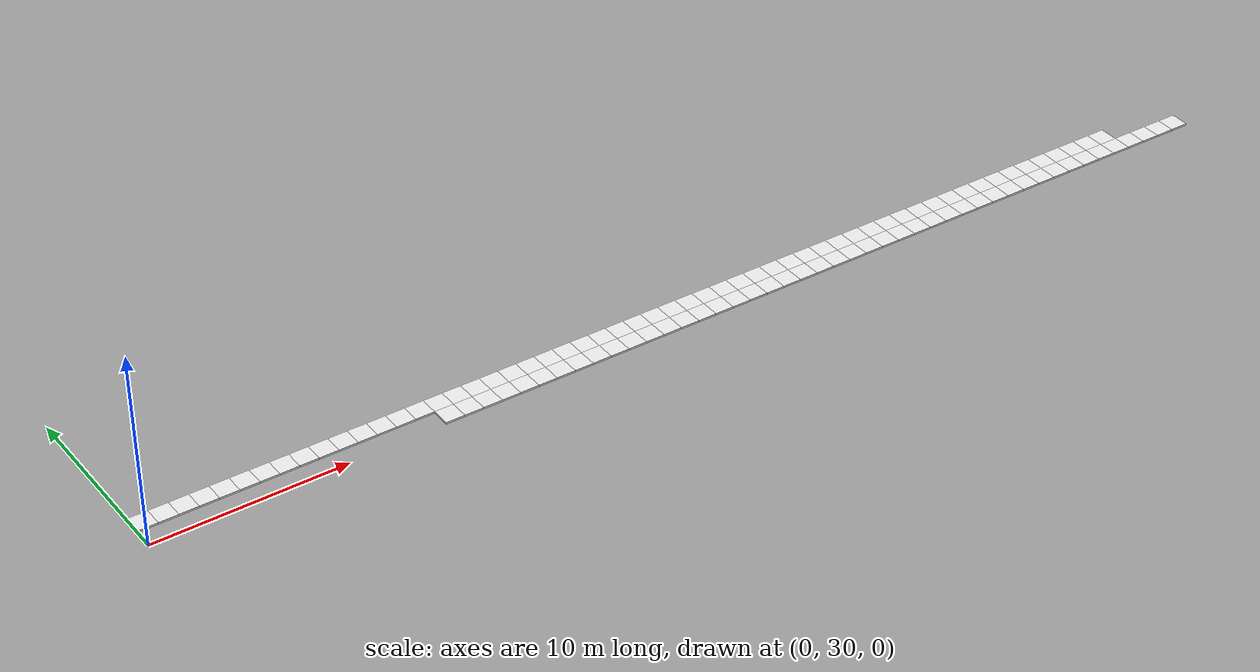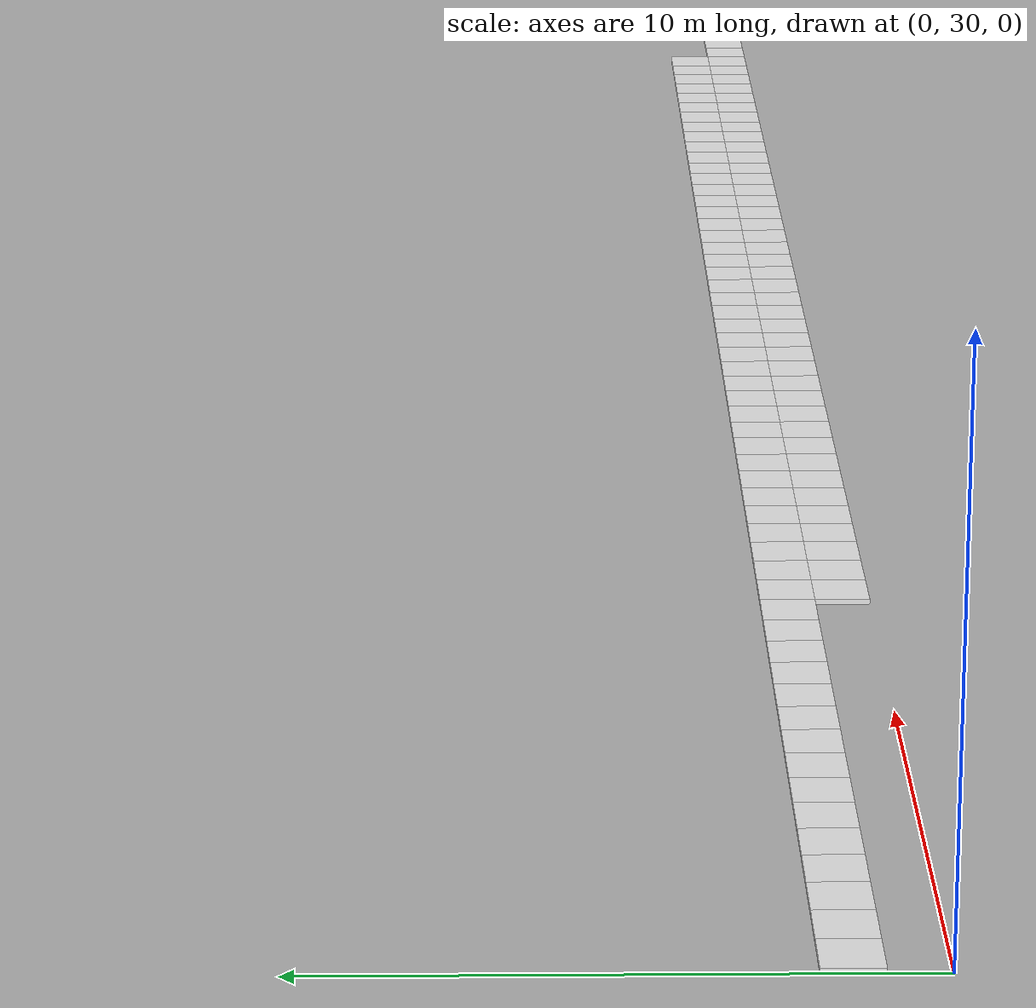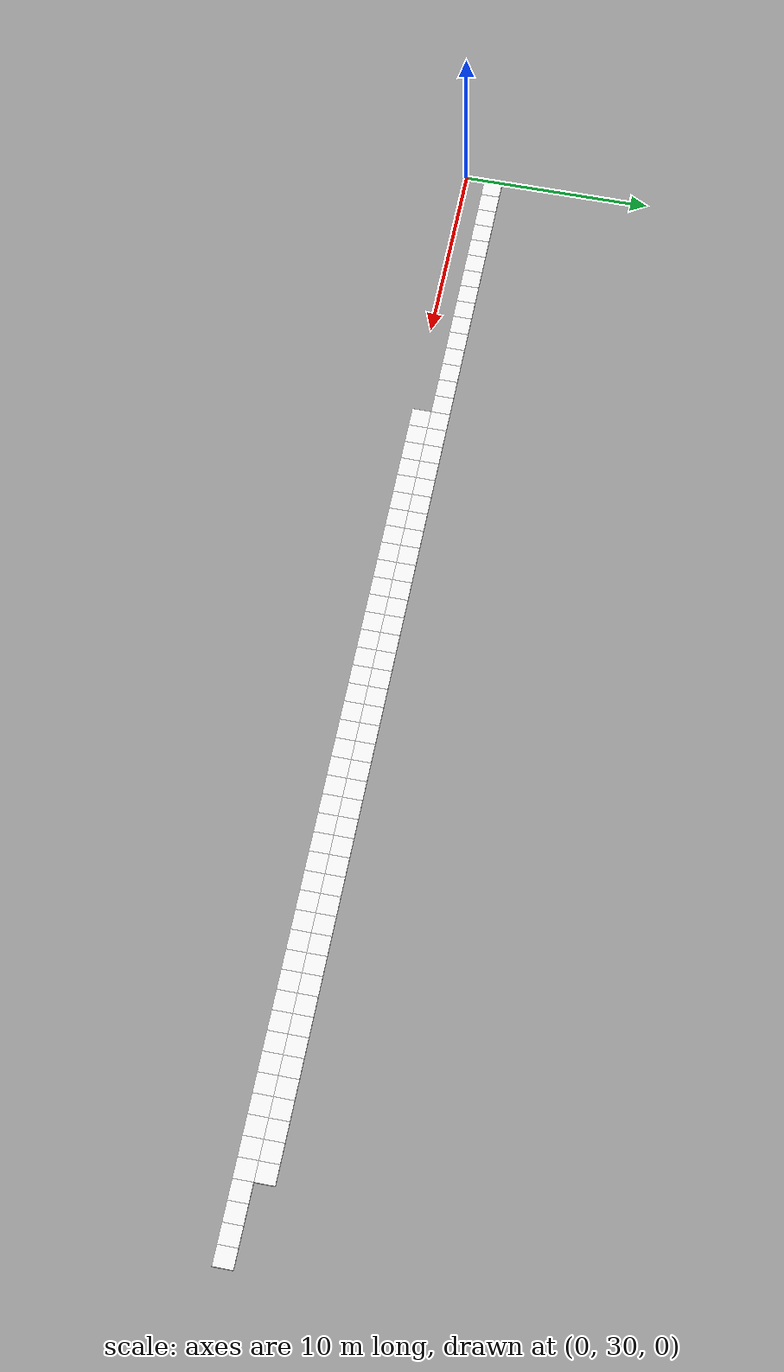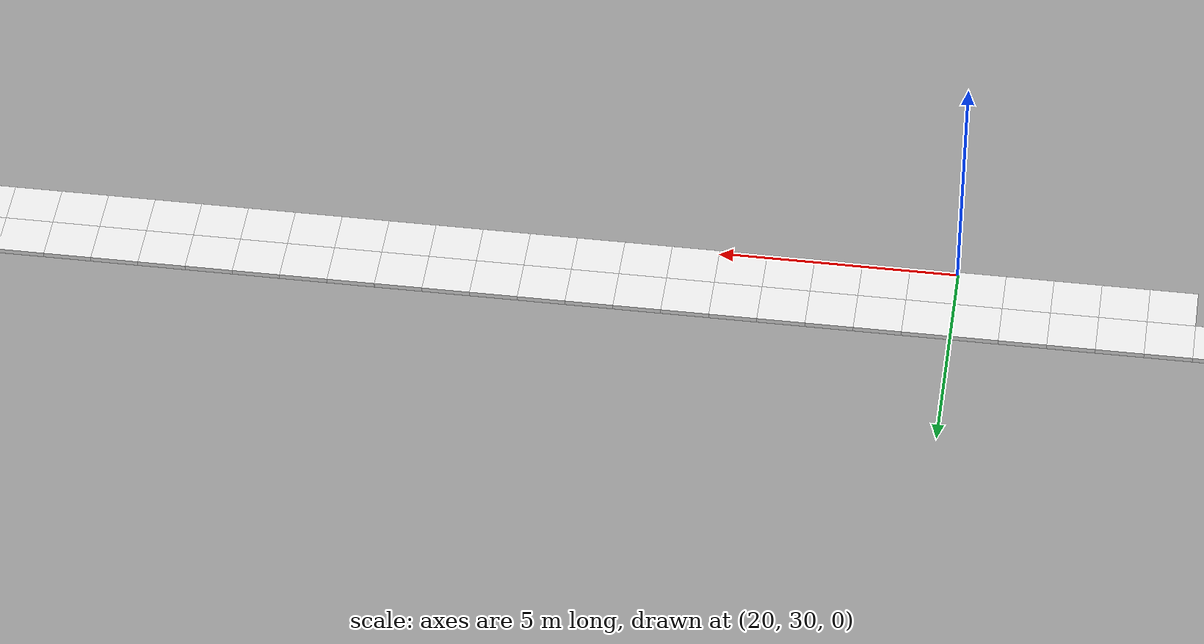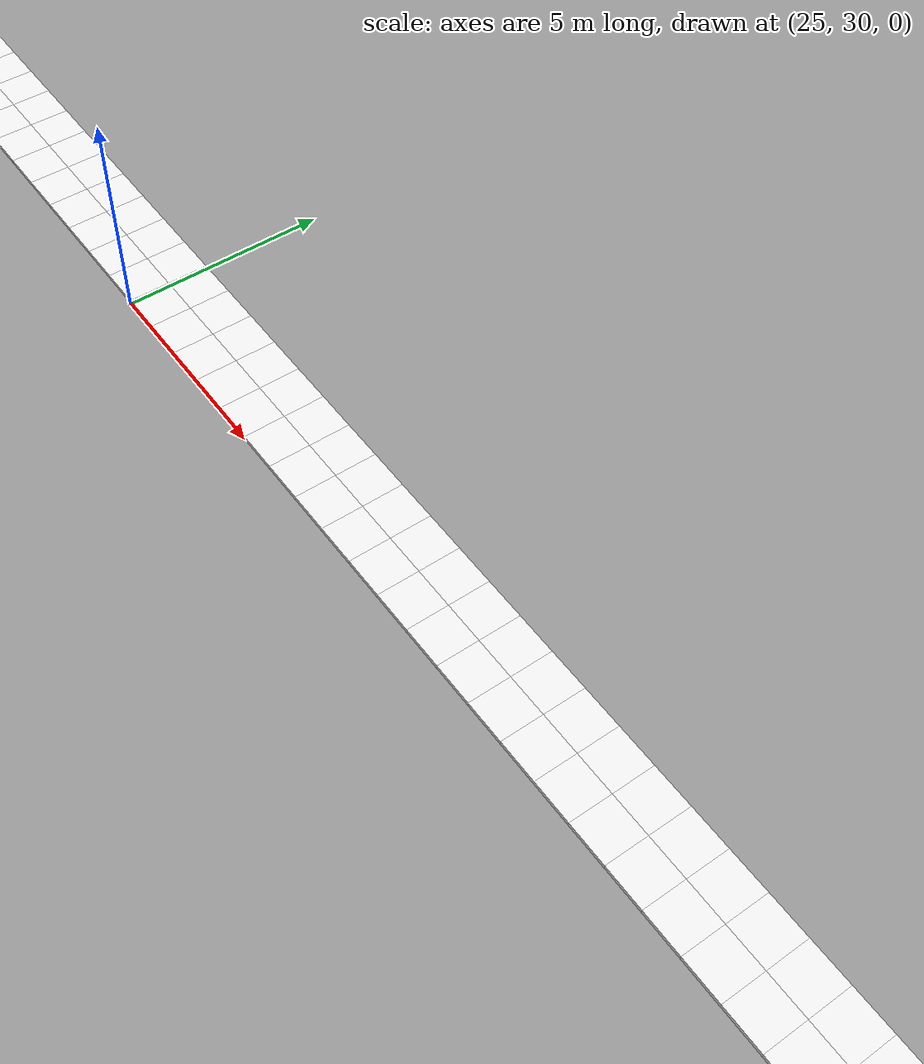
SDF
<sdf version="1.6">
 <world name="grid_world">
  <model name="cell_15_30">
   <static>true</static>
   <link name="link">
    <collision name="collision"><geometry><box><size>1 1 0.1</size></box></geometry></collision>
    <visual name="visual">
     <geometry><box><size>1 1 0.1</size></box></geometry>
     <material>
      <script><uri>file://media/materials/scripts/gazebo.material</uri><name>Gazebo/White</name></script>
     </material>
    </visual>
    <pose>15.5 30.5 0.05 0 0 0</pose>
   </link>
  </model>
  <model name="cell_16_30">
   <static>true</static>
   <link name="link">
    <collision name="collision"><geometry><box><size>1 1 0.1</size></box></geometry></collision>
    <visual name="visual">
     <geometry><box><size>1 1 0.1</size></box></geometry>
     <material>
      <script><uri>file://media/materials/scripts/gazebo.material</uri><name>Gazebo/White</name></script>
     </material>
    </visual>
    <pose>16.5 30.5 0.05 0 0 0</pose>
   </link>
  </model>
  <model name="cell_17_30">
   <static>true</static>
   <link name="link">
    <collision name="collision"><geometry><box><size>1 1 0.1</size></box></geometry></collision>
    <visual name="visual">
     <geometry><box><size>1 1 0.1</size></box></geometry>
     <material>
      <script><uri>file://media/materials/scripts/gazebo.material</uri><name>Gazebo/White</name></script>
     </material>
    </visual>
    <pose>17.5 30.5 0.05 0 0 0</pose>
   </link>
  </model>
  <model name="cell_18_30">
   <static>true</static>
   <link name="link">
    <collision name="collision"><geometry><box><size>1 1 0.1</size></box></geometry></collision>
    <visual name="visual">
     <geometry><box><size>1 1 0.1</size></box></geometry>
     <material>
      <script><uri>file://media/materials/scripts/gazebo.material</uri><name>Gazebo/White</name></script>
     </material>
    </visual>
    <pose>18.5 30.5 0.05 0 0 0</pose>
   </link>
  </model>
  <model name="cell_19_30">
   <static>true</static>
   <link name="link">
    <collision name="collision"><geometry><box><size>1 1 0.1</size></box></geometry></collision>
    <visual name="visual">
     <geometry><box><size>1 1 0.1</size></box></geometry>
     <material>
      <script><uri>file://media/materials/scripts/gazebo.material</uri><name>Gazebo/White</name></script>
     </material>
    </visual>
    <pose>19.5 30.5 0.05 0 0 0</pose>
   </link>
  </model>
  <model name="cell_20_30">
   <static>true</static>
   <link name="link">
    <collision name="collision"><geometry><box><size>1 1 0.1</size></box></geometry></collision>
    <visual name="visual">
     <geometry><box><size>1 1 0.1</size></box></geometry>
     <material>
      <script><uri>file://media/materials/scripts/gazebo.material</uri><name>Gazebo/White</name></script>
     </material>
    </visual>
    <pose>20.5 30.5 0.05 0 0 0</pose>
   </link>
  </model>
  <model name="cell_21_30">
   <static>true</static>
   <link name="link">
    <collision name="collision"><geometry><box><size>1 1 0.1</size></box></geometry></collision>
    <visual name="visual">
     <geometry><box><size>1 1 0.1</size></box></geometry>
     <material>
      <script><uri>file://media/materials/scripts/gazebo.material</uri><name>Gazebo/White</name></script>
     </material>
    </visual>
    <pose>21.5 30.5 0.05 0 0 0</pose>
   </link>
  </model>
  <model name="cell_22_30">
   <static>true</static>
   <link name="link">
    <collision name="collision"><geometry><box><size>1 1 0.1</size></box></geometry></collision>
    <visual name="visual">
     <geometry><box><size>1 1 0.1</size></box></geometry>
     <material>
      <script><uri>file://media/materials/scripts/gazebo.material</uri><name>Gazebo/White</name></script>
     </material>
    </visual>
    <pose>22.5 30.5 0.05 0 0 0</pose>
   </link>
  </model>
  <model name="cell_23_30">
   <static>true</static>
   <link name="link">
    <collision name="collision"><geometry><box><size>1 1 0.1</size></box></geometry></collision>
    <visual name="visual">
     <geometry><box><size>1 1 0.1</size></box></geometry>
     <material>
      <script><uri>file://media/materials/scripts/gazebo.material</uri><name>Gazebo/White</name></script>
     </material>
    </visual>
    <pose>23.5 30.5 0.05 0 0 0</pose>
   </link>
  </model>
  <model name="cell_24_30">
   <static>true</static>
   <link name="link">
    <collision name="collision"><geometry><box><size>1 1 0.1</size></box></geometry></collision>
    <visual name="visual">
     <geometry><box><size>1 1 0.1</size></box></geometry>
     <material>
      <script><uri>file://media/materials/scripts/gazebo.material</uri><name>Gazebo/White</name></script>
     </material>
    </visual>
    <pose>24.5 30.5 0.05 0 0 0</pose>
   </link>
  </model>
  <model name="cell_25_30">
   <static>true</static>
   <link name="link">
    <collision name="collision"><geometry><box><size>1 1 0.1</size></box></geometry></collision>
    <visual name="visual">
     <geometry><box><size>1 1 0.1</size></box></geometry>
     <material>
      <script><uri>file://media/materials/scripts/gazebo.material</uri><name>Gazebo/White</name></script>
     </material>
    </visual>
    <pose>25.5 30.5 0.05 0 0 0</pose>
   </link>
  </model>
  <model name="cell_26_30">
   <static>true</static>
   <link name="link">
    <collision name="collision"><geometry><box><size>1 1 0.1</size></box></geometry></collision>
    <visual name="visual">
     <geometry><box><size>1 1 0.1</size></box></geometry>
     <material>
      <script><uri>file://media/materials/scripts/gazebo.material</uri><name>Gazebo/White</name></script>
     </material>
    </visual>
    <pose>26.5 30.5 0.05 0 0 0</pose>
   </link>
  </model>
  <model name="cell_27_30">
   <static>true</static>
   <link name="link">
    <collision name="collision"><geometry><box><size>1 1 0.1</size></box></geometry></collision>
    <visual name="visual">
     <geometry><box><size>1 1 0.1</size></box></geometry>
     <material>
      <script><uri>file://media/materials/scripts/gazebo.material</uri><name>Gazebo/White</name></script>
     </material>
    </visual>
    <pose>27.5 30.5 0.05 0 0 0</pose>
   </link>
  </model>
  <model name="cell_28_30">
   <static>true</static>
   <link name="link">
    <collision name="collision"><geometry><box><size>1 1 0.1</size></box></geometry></collision>
    <visual name="visual">
     <geometry><box><size>1 1 0.1</size></box></geometry>
     <material>
      <script><uri>file://media/materials/scripts/gazebo.material</uri><name>Gazebo/White</name></script>
     </material>
    </visual>
    <pose>28.5 30.5 0.05 0 0 0</pose>
   </link>
  </model>
  <model name="cell_29_30">
   <static>true</static>
   <link name="link">
    <collision name="collision"><geometry><box><size>1 1 0.1</size></box></geometry></collision>
    <visual name="visual">
     <geometry><box><size>1 1 0.1</size></box></geometry>
     <material>
      <script><uri>file://media/materials/scripts/gazebo.material</uri><name>Gazebo/White</name></script>
     </material>
    </visual>
    <pose>29.5 30.5 0.05 0 0 0</pose>
   </link>
  </model>
  <model name="cell_30_30">
   <static>true</static>
   <link name="link">
    <collision name="collision"><geometry><box><size>1 1 0.1</size></box></geometry></collision>
    <visual name="visual">
     <geometry><box><size>1 1 0.1</size></box></geometry>
     <material>
      <script><uri>file://media/materials/scripts/gazebo.material</uri><name>Gazebo/White</name></script>
     </material>
    </visual>
    <pose>30.5 30.5 0.05 0 0 0</pose>
   </link>
  </model>
  <model name="cell_31_30">
   <static>true</static>
   <link name="link">
    <collision name="collision"><geometry><box><size>1 1 0.1</size></box></geometry></collision>
    <visual name="visual">
     <geometry><box><size>1 1 0.1</size></box></geometry>
     <material>
      <script><uri>file://media/materials/scripts/gazebo.material</uri><name>Gazebo/White</name></script>
     </material>
    </visual>
    <pose>31.5 30.5 0.05 0 0 0</pose>
   </link>
  </model>
  <model name="cell_32_30">
   <static>true</static>
   <link name="link">
    <collision name="collision"><geometry><box><size>1 1 0.1</size></box></geometry></collision>
    <visual name="visual">
     <geometry><box><size>1 1 0.1</size></box></geometry>
     <material>
      <script><uri>file://media/materials/scripts/gazebo.material</uri><name>Gazebo/White</name></script>
     </material>
    </visual>
    <pose>32.5 30.5 0.05 0 0 0</pose>
   </link>
  </model>
  <model name="cell_33_30">
   <static>true</static>
   <link name="link">
    <collision name="collision"><geometry><box><size>1 1 0.1</size></box></geometry></collision>
    <visual name="visual">
     <geometry><box><size>1 1 0.1</size></box></geometry>
     <material>
      <script><uri>file://media/materials/scripts/gazebo.material</uri><name>Gazebo/White</name></script>
     </material>
    </visual>
    <pose>33.5 30.5 0.05 0 0 0</pose>
   </link>
  </model>
  <model name="cell_34_30">
   <static>true</static>
   <link name="link">
    <collision name="collision"><geometry><box><size>1 1 0.1</size></box></geometry></collision>
    <visual name="visual">
     <geometry><box><size>1 1 0.1</size></box></geometry>
     <material>
      <script><uri>file://media/materials/scripts/gazebo.material</uri><name>Gazebo/White</name></script>
     </material>
    </visual>
    <pose>34.5 30.5 0.05 0 0 0</pose>
   </link>
  </model>
  <model name="cell_35_30">
   <static>true</static>
   <link name="link">
    <collision name="collision"><geometry><box><size>1 1 0.1</size></box></geometry></collision>
    <visual name="visual">
     <geometry><box><size>1 1 0.1</size></box></geometry>
     <material>
      <script><uri>file://media/materials/scripts/gazebo.material</uri><name>Gazebo/White</name></script>
     </material>
    </visual>
    <pose>35.5 30.5 0.05 0 0 0</pose>
   </link>
  </model>
  <model name="cell_36_30">
   <static>true</static>
   <link name="link">
    <collision name="collision"><geometry><box><size>1 1 0.1</size></box></geometry></collision>
    <visual name="visual">
     <geometry><box><size>1 1 0.1</size></box></geometry>
     <material>
      <script><uri>file://media/materials/scripts/gazebo.material</uri><name>Gazebo/White</name></script>
     </material>
    </visual>
    <pose>36.5 30.5 0.05 0 0 0</pose>
   </link>
  </model>
  <model name="cell_37_30">
   <static>true</static>
   <link name="link">
    <collision name="collision"><geometry><box><size>1 1 0.1</size></box></geometry></collision>
    <visual name="visual">
     <geometry><box><size>1 1 0.1</size></box></geometry>
     <material>
      <script><uri>file://media/materials/scripts/gazebo.material</uri><name>Gazebo/White</name></script>
     </material>
    </visual>
    <pose>37.5 30.5 0.05 0 0 0</pose>
   </link>
  </model>
  <model name="cell_38_30">
   <static>true</static>
   <link name="link">
    <collision name="collision"><geometry><box><size>1 1 0.1</size></box></geometry></collision>
    <visual name="visual">
     <geometry><box><size>1 1 0.1</size></box></geometry>
     <material>
      <script><uri>file://media/materials/scripts/gazebo.material</uri><name>Gazebo/White</name></script>
     </material>
    </visual>
    <pose>38.5 30.5 0.05 0 0 0</pose>
   </link>
  </model>
  <model name="cell_39_30">
   <static>true</static>
   <link name="link">
    <collision name="collision"><geometry><box><size>1 1 0.1</size></box></geometry></collision>
    <visual name="visual">
     <geometry><box><size>1 1 0.1</size></box></geometry>
     <material>
      <script><uri>file://media/materials/scripts/gazebo.material</uri><name>Gazebo/White</name></script>
     </material>
    </visual>
    <pose>39.5 30.5 0.05 0 0 0</pose>
   </link>
  </model>
  <model name="cell_40_30">
   <static>true</static>
   <link name="link">
    <collision name="collision"><geometry><box><size>1 1 0.1</size></box></geometry></collision>
    <visual name="visual">
     <geometry><box><size>1 1 0.1</size></box></geometry>
     <material>
      <script><uri>file://media/materials/scripts/gazebo.material</uri><name>Gazebo/White</name></script>
     </material>
    </visual>
    <pose>40.5 30.5 0.05 0 0 0</pose>
   </link>
  </model>
  <model name="cell_41_30">
   <static>true</static>
   <link name="link">
    <collision name="collision"><geometry><box><size>1 1 0.1</size></box></geometry></collision>
    <visual name="visual">
     <geometry><box><size>1 1 0.1</size></box></geometry>
     <material>
      <script><uri>file://media/materials/scripts/gazebo.material</uri><name>Gazebo/White</name></script>
     </material>
    </visual>
    <pose>41.5 30.5 0.05 0 0 0</pose>
   </link>
  </model>
  <model name="cell_42_30">
   <static>true</static>
   <link name="link">
    <collision name="collision"><geometry><box><size>1 1 0.1</size></box></geometry></collision>
    <visual name="visual">
     <geometry><box><size>1 1 0.1</size></box></geometry>
     <material>
      <script><uri>file://media/materials/scripts/gazebo.material</uri><name>Gazebo/White</name></script>
     </material>
    </visual>
    <pose>42.5 30.5 0.05 0 0 0</pose>
   </link>
  </model>
  <model name="cell_43_30">
   <static>true</static>
   <link name="link">
    <collision name="collision"><geometry><box><size>1 1 0.1</size></box></geometry></collision>
    <visual name="visual">
     <geometry><box><size>1 1 0.1</size></box></geometry>
     <material>
      <script><uri>file://media/materials/scripts/gazebo.material</uri><name>Gazebo/White</name></script>
     </material>
    </visual>
    <pose>43.5 30.5 0.05 0 0 0</pose>
   </link>
  </model>
  <model name="cell_44_30">
   <static>true</static>
   <link name="link">
    <collision name="collision"><geometry><box><size>1 1 0.1</size></box></geometry></collision>
    <visual name="visual">
     <geometry><box><size>1 1 0.1</size></box></geometry>
     <material>
      <script><uri>file://media/materials/scripts/gazebo.material</uri><name>Gazebo/White</name></script>
     </material>
    </visual>
    <pose>44.5 30.5 0.05 0 0 0</pose>
   </link>
  </model>
  <model name="cell_45_30">
   <static>true</static>
   <link name="link">
    <collision name="collision"><geometry><box><size>1 1 0.1</size></box></geometry></collision>
    <visual name="visual">
     <geometry><box><size>1 1 0.1</size></box></geometry>
     <material>
      <script><uri>file://media/materials/scripts/gazebo.material</uri><name>Gazebo/White</name></script>
     </material>
    </visual>
    <pose>45.5 30.5 0.05 0 0 0</pose>
   </link>
  </model>
  <model name="cell_46_30">
   <static>true</static>
   <link name="link">
    <collision name="collision"><geometry><box><size>1 1 0.1</size></box></geometry></collision>
    <visual name="visual">
     <geometry><box><size>1 1 0.1</size></box></geometry>
     <material>
      <script><uri>file://media/materials/scripts/gazebo.material</uri><name>Gazebo/White</name></script>
     </material>
    </visual>
    <pose>46.5 30.5 0.05 0 0 0</pose>
   </link>
  </model>
  <model name="cell_47_30">
   <static>true</static>
   <link name="link">
    <collision name="collision"><geometry><box><size>1 1 0.1</size></box></geometry></collision>
    <visual name="visual">
     <geometry><box><size>1 1 0.1</size></box></geometry>
     <material>
      <script><uri>file://media/materials/scripts/gazebo.material</uri><name>Gazebo/White</name></script>
     </material>
    </visual>
    <pose>47.5 30.5 0.05 0 0 0</pose>
   </link>
  </model>
  <model name="cell_48_30">
   <static>true</static>
   <link name="link">
    <collision name="collision"><geometry><box><size>1 1 0.1</size></box></geometry></collision>
    <visual name="visual">
     <geometry><box><size>1 1 0.1</size></box></geometry>
     <material>
      <script><uri>file://media/materials/scripts/gazebo.material</uri><name>Gazebo/White</name></script>
     </material>
    </visual>
    <pose>48.5 30.5 0.05 0 0 0</pose>
   </link>
  </model>
  <model name="cell_49_30">
   <static>true</static>
   <link name="link">
    <collision name="collision"><geometry><box><size>1 1 0.1</size></box></geometry></collision>
    <visual name="visual">
     <geometry><box><size>1 1 0.1</size></box></geometry>
     <material>
      <script><uri>file://media/materials/scripts/gazebo.material</uri><name>Gazebo/White</name></script>
     </material>
    </visual>
    <pose>49.5 30.5 0.05 0 0 0</pose>
   </link>
  </model>
  <model name="cell_50_30">
   <static>true</static>
   <link name="link">
    <collision name="collision"><geometry><box><size>1 1 0.1</size></box></geometry></collision>
    <visual name="visual">
     <geometry><box><size>1 1 0.1</size></box></geometry>
     <material>
      <script><uri>file://media/materials/scripts/gazebo.material</uri><name>Gazebo/White</name></script>
     </material>
    </visual>
    <pose>50.5 30.5 0.05 0 0 0</pose>
   </link>
  </model>
  <model name="cell_51_30">
   <static>true</static>
   <link name="link">
    <collision name="collision"><geometry><box><size>1 1 0.1</size></box></geometry></collision>
    <visual name="visual">
     <geometry><box><size>1 1 0.1</size></box></geometry>
     <material>
      <script><uri>file://media/materials/scripts/gazebo.material</uri><name>Gazebo/White</name></script>
     </material>
    </visual>
    <pose>51.5 30.5 0.05 0 0 0</pose>
   </link>
  </model>
  <model name="cell_52_30">
   <static>true</static>
   <link name="link">
    <collision name="collision"><geometry><box><size>1 1 0.1</size></box></geometry></collision>
    <visual name="visual">
     <geometry><box><size>1 1 0.1</size></box></geometry>
     <material>
      <script><uri>file://media/materials/scripts/gazebo.material</uri><name>Gazebo/White</name></script>
     </material>
    </visual>
    <pose>52.5 30.5 0.05 0 0 0</pose>
   </link>
  </model>
  <model name="cell_53_30">
   <static>true</static>
   <link name="link">
    <collision name="collision"><geometry><box><size>1 1 0.1</size></box></geometry></collision>
    <visual name="visual">
     <geometry><box><size>1 1 0.1</size></box></geometry>
     <material>
      <script><uri>file://media/materials/scripts/gazebo.material</uri><name>Gazebo/White</name></script>
     </material>
    </visual>
    <pose>53.5 30.5 0.05 0 0 0</pose>
   </link>
  </model>
  <model name="cell_54_30">
   <static>true</static>
   <link name="link">
    <collision name="collision"><geometry><box><size>1 1 0.1</size></box></geometry></collision>
    <visual name="visual">
     <geometry><box><size>1 1 0.1</size></box></geometry>
     <material>
      <script><uri>file://media/materials/scripts/gazebo.material</uri><name>Gazebo/White</name></script>
     </material>
    </visual>
    <pose>54.5 30.5 0.05 0 0 0</pose>
   </link>
  </model>
  <model name="cell_55_30">
   <static>true</static>
   <link name="link">
    <collision name="collision"><geometry><box><size>1 1 0.1</size></box></geometry></collision>
    <visual name="visual">
     <geometry><box><size>1 1 0.1</size></box></geometry>
     <material>
      <script><uri>file://media/materials/scripts/gazebo.material</uri><name>Gazebo/White</name></script>
     </material>
    </visual>
    <pose>55.5 30.5 0.05 0 0 0</pose>
   </link>
  </model>
  <model name="cell_56_30">
   <static>true</static>
   <link name="link">
    <collision name="collision"><geometry><box><size>1 1 0.1</size></box></geometry></collision>
    <visual name="visual">
     <geometry><box><size>1 1 0.1</size></box></geometry>
     <material>
      <script><uri>file://media/materials/scripts/gazebo.material</uri><name>Gazebo/White</name></script>
     </material>
    </visual>
    <pose>56.5 30.5 0.05 0 0 0</pose>
   </link>
  </model>
  <model name="cell_57_30">
   <static>true</static>
   <link name="link">
    <collision name="collision"><geometry><box><size>1 1 0.1</size></box></geometry></collision>
    <visual name="visual">
     <geometry><box><size>1 1 0.1</size></box></geometry>
     <material>
      <script><uri>file://media/materials/scripts/gazebo.material</uri><name>Gazebo/White</name></script>
     </material>
    </visual>
    <pose>57.5 30.5 0.05 0 0 0</pose>
   </link>
  </model>
  <model name="cell_58_30">
   <static>true</static>
   <link name="link">
    <collision name="collision"><geometry><box><size>1 1 0.1</size></box></geometry></collision>
    <visual name="visual">
     <geometry><box><size>1 1 0.1</size></box></geometry>
     <material>
      <script><uri>file://media/materials/scripts/gazebo.material</uri><name>Gazebo/White</name></script>
     </material>
    </visual>
    <pose>58.5 30.5 0.05 0 0 0</pose>
   </link>
  </model>
  <model name="cell_59_30">
   <static>true</static>
   <link name="link">
    <collision name="collision"><geometry><box><size>1 1 0.1</size></box></geometry></collision>
    <visual name="visual">
     <geometry><box><size>1 1 0.1</size></box></geometry>
     <material>
      <script><uri>file://media/materials/scripts/gazebo.material</uri><name>Gazebo/White</name></script>
     </material>
    </visual>
    <pose>59.5 30.5 0.05 0 0 0</pose>
   </link>
  </model>
  <model name="cell_0_31">
   <static>true</static>
   <link name="link">
    <collision name="collision"><geometry><box><size>1 1 0.1</size></box></geometry></collision>
    <visual name="visual">
     <geometry><box><size>1 1 0.1</size></box></geometry>
     <material>
      <script><uri>file://media/materials/scripts/gazebo.material</uri><name>Gazebo/White</name></script>
     </material>
    </visual>
    <pose>0.5 31.5 0.05 0 0 0</pose>
   </link>
  </model>
  <model name="cell_1_31">
   <static>true</static>
   <link name="link">
    <collision name="collision"><geometry><box><size>1 1 0.1</size></box></geometry></collision>
    <visual name="visual">
     <geometry><box><size>1 1 0.1</size></box></geometry>
     <material>
      <script><uri>file://media/materials/scripts/gazebo.material</uri><name>Gazebo/White</name></script>
     </material>
    </visual>
    <pose>1.5 31.5 0.05 0 0 0</pose>
   </link>
  </model>
  <model name="cell_2_31">
   <static>true</static>
   <link name="link">
    <collision name="collision"><geometry><box><size>1 1 0.1</size></box></geometry></collision>
    <visual name="visual">
     <geometry><box><size>1 1 0.1</size></box></geometry>
     <material>
      <script><uri>file://media/materials/scripts/gazebo.material</uri><name>Gazebo/White</name></script>
     </material>
    </visual>
    <pose>2.5 31.5 0.05 0 0 0</pose>
   </link>
  </model>
  <model name="cell_3_31">
   <static>true</static>
   <link name="link">
    <collision name="collision"><geometry><box><size>1 1 0.1</size></box></geometry></collision>
    <visual name="visual">
     <geometry><box><size>1 1 0.1</size></box></geometry>
     <material>
      <script><uri>file://media/materials/scripts/gazebo.material</uri><name>Gazebo/White</name></script>
     </material>
    </visual>
    <pose>3.5 31.5 0.05 0 0 0</pose>
   </link>
  </model>
  <model name="cell_4_31">
   <static>true</static>
   <link name="link">
    <collision name="collision"><geometry><box><size>1 1 0.1</size></box></geometry></collision>
    <visual name="visual">
     <geometry><box><size>1 1 0.1</size></box></geometry>
     <material>
      <script><uri>file://media/materials/scripts/gazebo.material</uri><name>Gazebo/White</name></script>
     </material>
    </visual>
    <pose>4.5 31.5 0.05 0 0 0</pose>
   </link>
  </model>
  <model name="cell_5_31">
   <static>true</static>
   <link name="link">
    <collision name="collision"><geometry><box><size>1 1 0.1</size></box></geometry></collision>
    <visual name="visual">
     <geometry><box><size>1 1 0.1</size></box></geometry>
     <material>
      <script><uri>file://media/materials/scripts/gazebo.material</uri><name>Gazebo/White</name></script>
     </material>
    </visual>
    <pose>5.5 31.5 0.05 0 0 0</pose>
   </link>
  </model>
  <model name="cell_6_31">
   <static>true</static>
   <link name="link">
    <collision name="collision"><geometry><box><size>1 1 0.1</size></box></geometry></collision>
    <visual name="visual">
     <geometry><box><size>1 1 0.1</size></box></geometry>
     <material>
      <script><uri>file://media/materials/scripts/gazebo.material</uri><name>Gazebo/White</name></script>
     </material>
    </visual>
    <pose>6.5 31.5 0.05 0 0 0</pose>
   </link>
  </model>
  <model name="cell_7_31">
   <static>true</static>
   <link name="link">
    <collision name="collision"><geometry><box><size>1 1 0.1</size></box></geometry></collision>
    <visual name="visual">
     <geometry><box><size>1 1 0.1</size></box></geometry>
     <material>
      <script><uri>file://media/materials/scripts/gazebo.material</uri><name>Gazebo/White</name></script>
     </material>
    </visual>
    <pose>7.5 31.5 0.05 0 0 0</pose>
   </link>
  </model>
  <model name="cell_8_31">
   <static>true</static>
   <link name="link">
    <collision name="collision"><geometry><box><size>1 1 0.1</size></box></geometry></collision>
    <visual name="visual">
     <geometry><box><size>1 1 0.1</size></box></geometry>
     <material>
      <script><uri>file://media/materials/scripts/gazebo.material</uri><name>Gazebo/White</name></script>
     </material>
    </visual>
    <pose>8.5 31.5 0.05 0 0 0</pose>
   </link>
  </model>
  <model name="cell_9_31">
   <static>true</static>
   <link name="link">
    <collision name="collision"><geometry><box><size>1 1 0.1</size></box></geometry></collision>
    <visual name="visual">
     <geometry><box><size>1 1 0.1</size></box></geometry>
     <material>
      <script><uri>file://media/materials/scripts/gazebo.material</uri><name>Gazebo/White</name></script>
     </material>
    </visual>
    <pose>9.5 31.5 0.05 0 0 0</pose>
   </link>
  </model>
  <model name="cell_10_31">
   <static>true</static>
   <link name="link">
    <collision name="collision"><geometry><box><size>1 1 0.1</size></box></geometry></collision>
    <visual name="visual">
     <geometry><box><size>1 1 0.1</size></box></geometry>
     <material>
      <script><uri>file://media/materials/scripts/gazebo.material</uri><name>Gazebo/White</name></script>
     </material>
    </visual>
    <pose>10.5 31.5 0.05 0 0 0</pose>
   </link>
  </model>
  <model name="cell_11_31">
   <static>true</static>
   <link name="link">
    <collision name="collision"><geometry><box><size>1 1 0.1</size></box></geometry></collision>
    <visual name="visual">
     <geometry><box><size>1 1 0.1</size></box></geometry>
     <material>
      <script><uri>file://media/materials/scripts/gazebo.material</uri><name>Gazebo/White</name></script>
     </material>
    </visual>
    <pose>11.5 31.5 0.05 0 0 0</pose>
   </link>
  </model>
  <model name="cell_12_31">
   <static>true</static>
   <link name="link">
    <collision name="collision"><geometry><box><size>1 1 0.1</size></box></geometry></collision>
    <visual name="visual">
     <geometry><box><size>1 1 0.1</size></box></geometry>
     <material>
      <script><uri>file://media/materials/scripts/gazebo.material</uri><name>Gazebo/White</name></script>
     </material>
    </visual>
    <pose>12.5 31.5 0.05 0 0 0</pose>
   </link>
  </model>
  <model name="cell_13_31">
   <static>true</static>
   <link name="link">
    <collision name="collision"><geometry><box><size>1 1 0.1</size></box></geometry></collision>
    <visual name="visual">
     <geometry><box><size>1 1 0.1</size></box></geometry>
     <material>
      <script><uri>file://media/materials/scripts/gazebo.material</uri><name>Gazebo/White</name></script>
     </material>
    </visual>
    <pose>13.5 31.5 0.05 0 0 0</pose>
   </link>
  </model>
  <model name="cell_14_31">
   <static>true</static>
   <link name="link">
    <collision name="collision"><geometry><box><size>1 1 0.1</size></box></geometry></collision>
    <visual name="visual">
     <geometry><box><size>1 1 0.1</size></box></geometry>
     <material>
      <script><uri>file://media/materials/scripts/gazebo.material</uri><name>Gazebo/White</name></script>
     </material>
    </visual>
    <pose>14.5 31.5 0.05 0 0 0</pose>
   </link>
  </model>
  <model name="cell_15_31">
   <static>true</static>
   <link name="link">
    <collision name="collision"><geometry><box><size>1 1 0.1</size></box></geometry></collision>
    <visual name="visual">
     <geometry><box><size>1 1 0.1</size></box></geometry>
     <material>
      <script><uri>file://media/materials/scripts/gazebo.material</uri><name>Gazebo/White</name></script>
     </material>
    </visual>
    <pose>15.5 31.5 0.05 0 0 0</pose>
   </link>
  </model>
  <model name="cell_16_31">
   <static>true</static>
   <link name="link">
    <collision name="collision"><geometry><box><size>1 1 0.1</size></box></geometry></collision>
    <visual name="visual">
     <geometry><box><size>1 1 0.1</size></box></geometry>
     <material>
      <script><uri>file://media/materials/scripts/gazebo.material</uri><name>Gazebo/White</name></script>
     </material>
    </visual>
    <pose>16.5 31.5 0.05 0 0 0</pose>
   </link>
  </model>
  <model name="cell_17_31">
   <static>true</static>
   <link name="link">
    <collision name="collision"><geometry><box><size>1 1 0.1</size></box></geometry></collision>
    <visual name="visual">
     <geometry><box><size>1 1 0.1</size></box></geometry>
     <material>
      <script><uri>file://media/materials/scripts/gazebo.material</uri><name>Gazebo/White</name></script>
     </material>
    </visual>
    <pose>17.5 31.5 0.05 0 0 0</pose>
   </link>
  </model>
  <model name="cell_18_31">
   <static>true</static>
   <link name="link">
    <collision name="collision"><geometry><box><size>1 1 0.1</size></box></geometry></collision>
    <visual name="visual">
     <geometry><box><size>1 1 0.1</size></box></geometry>
     <material>
      <script><uri>file://media/materials/scripts/gazebo.material</uri><name>Gazebo/White</name></script>
     </material>
    </visual>
    <pose>18.5 31.5 0.05 0 0 0</pose>
   </link>
  </model>
  <model name="cell_19_31">
   <static>true</static>
   <link name="link">
    <collision name="collision"><geometry><box><size>1 1 0.1</size></box></geometry></collision>
    <visual name="visual">
     <geometry><box><size>1 1 0.1</size></box></geometry>
     <material>
      <script><uri>file://media/materials/scripts/gazebo.material</uri><name>Gazebo/White</name></script>
     </material>
    </visual>
    <pose>19.5 31.5 0.05 0 0 0</pose>
   </link>
  </model>
  <model name="cell_20_31">
   <static>true</static>
   <link name="link">
    <collision name="collision"><geometry><box><size>1 1 0.1</size></box></geometry></collision>
    <visual name="visual">
     <geometry><box><size>1 1 0.1</size></box></geometry>
     <material>
      <script><uri>file://media/materials/scripts/gazebo.material</uri><name>Gazebo/White</name></script>
     </material>
    </visual>
    <pose>20.5 31.5 0.05 0 0 0</pose>
   </link>
  </model>
  <model name="cell_21_31">
   <static>true</static>
   <link name="link">
    <collision name="collision"><geometry><box><size>1 1 0.1</size></box></geometry></collision>
    <visual name="visual">
     <geometry><box><size>1 1 0.1</size></box></geometry>
     <material>
      <script><uri>file://media/materials/scripts/gazebo.material</uri><name>Gazebo/White</name></script>
     </material>
    </visual>
    <pose>21.5 31.5 0.05 0 0 0</pose>
   </link>
  </model>
  <model name="cell_22_31">
   <static>true</static>
   <link name="link">
    <collision name="collision"><geometry><box><size>1 1 0.1</size></box></geometry></collision>
    <visual name="visual">
     <geometry><box><size>1 1 0.1</size></box></geometry>
     <material>
      <script><uri>file://media/materials/scripts/gazebo.material</uri><name>Gazebo/White</name></script>
     </material>
    </visual>
    <pose>22.5 31.5 0.05 0 0 0</pose>
   </link>
  </model>
  <model name="cell_23_31">
   <static>true</static>
   <link name="link">
    <collision name="collision"><geometry><box><size>1 1 0.1</size></box></geometry></collision>
    <visual name="visual">
     <geometry><box><size>1 1 0.1</size></box></geometry>
     <material>
      <script><uri>file://media/materials/scripts/gazebo.material</uri><name>Gazebo/White</name></script>
     </material>
    </visual>
    <pose>23.5 31.5 0.05 0 0 0</pose>
   </link>
  </model>
  <model name="cell_24_31">
   <static>true</static>
   <link name="link">
    <collision name="collision"><geometry><box><size>1 1 0.1</size></box></geometry></collision>
    <visual name="visual">
     <geometry><box><size>1 1 0.1</size></box></geometry>
     <material>
      <script><uri>file://media/materials/scripts/gazebo.material</uri><name>Gazebo/White</name></script>
     </material>
    </visual>
    <pose>24.5 31.5 0.05 0 0 0</pose>
   </link>
  </model>
  <model name="cell_25_31">
   <static>true</static>
   <link name="link">
    <collision name="collision"><geometry><box><size>1 1 0.1</size></box></geometry></collision>
    <visual name="visual">
     <geometry><box><size>1 1 0.1</size></box></geometry>
     <material>
      <script><uri>file://media/materials/scripts/gazebo.material</uri><name>Gazebo/White</name></script>
     </material>
    </visual>
    <pose>25.5 31.5 0.05 0 0 0</pose>
   </link>
  </model>
  <model name="cell_26_31">
   <static>true</static>
   <link name="link">
    <collision name="collision"><geometry><box><size>1 1 0.1</size></box></geometry></collision>
    <visual name="visual">
     <geometry><box><size>1 1 0.1</size></box></geometry>
     <material>
      <script><uri>file://media/materials/scripts/gazebo.material</uri><name>Gazebo/White</name></script>
     </material>
    </visual>
    <pose>26.5 31.5 0.05 0 0 0</pose>
   </link>
  </model>
  <model name="cell_27_31">
   <static>true</static>
   <link name="link">
    <collision name="collision"><geometry><box><size>1 1 0.1</size></box></geometry></collision>
    <visual name="visual">
     <geometry><box><size>1 1 0.1</size></box></geometry>
     <material>
      <script><uri>file://media/materials/scripts/gazebo.material</uri><name>Gazebo/White</name></script>
     </material>
    </visual>
    <pose>27.5 31.5 0.05 0 0 0</pose>
   </link>
  </model>
  <model name="cell_28_31">
   <static>true</static>
   <link name="link">
    <collision name="collision"><geometry><box><size>1 1 0.1</size></box></geometry></collision>
    <visual name="visual">
     <geometry><box><size>1 1 0.1</size></box></geometry>
     <material>
      <script><uri>file://media/materials/scripts/gazebo.material</uri><name>Gazebo/White</name></script>
     </material>
    </visual>
    <pose>28.5 31.5 0.05 0 0 0</pose>
   </link>
  </model>
  <model name="cell_29_31">
   <static>true</static>
   <link name="link">
    <collision name="collision"><geometry><box><size>1 1 0.1</size></box></geometry></collision>
    <visual name="visual">
     <geometry><box><size>1 1 0.1</size></box></geometry>
     <material>
      <script><uri>file://media/materials/scripts/gazebo.material</uri><name>Gazebo/White</name></script>
     </material>
    </visual>
    <pose>29.5 31.5 0.05 0 0 0</pose>
   </link>
  </model>
  <model name="cell_30_31">
   <static>true</static>
   <link name="link">
    <collision name="collision"><geometry><box><size>1 1 0.1</size></box></geometry></collision>
    <visual name="visual">
     <geometry><box><size>1 1 0.1</size></box></geometry>
     <material>
      <script><uri>file://media/materials/scripts/gazebo.material</uri><name>Gazebo/White</name></script>
     </material>
    </visual>
    <pose>30.5 31.5 0.05 0 0 0</pose>
   </link>
  </model>
  <model name="cell_31_31">
   <static>true</static>
   <link name="link">
    <collision name="collision"><geometry><box><size>1 1 0.1</size></box></geometry></collision>
    <visual name="visual">
     <geometry><box><size>1 1 0.1</size></box></geometry>
     <material>
      <script><uri>file://media/materials/scripts/gazebo.material</uri><name>Gazebo/White</name></script>
     </material>
    </visual>
    <pose>31.5 31.5 0.05 0 0 0</pose>
   </link>
  </model>
  <model name="cell_32_31">
   <static>true</static>
   <link name="link">
    <collision name="collision"><geometry><box><size>1 1 0.1</size></box></geometry></collision>
    <visual name="visual">
     <geometry><box><size>1 1 0.1</size></box></geometry>
     <material>
      <script><uri>file://media/materials/scripts/gazebo.material</uri><name>Gazebo/White</name></script>
     </material>
    </visual>
    <pose>32.5 31.5 0.05 0 0 0</pose>
   </link>
  </model>
  <model name="cell_33_31">
   <static>true</static>
   <link name="link">
    <collision name="collision"><geometry><box><size>1 1 0.1</size></box></geometry></collision>
    <visual name="visual">
     <geometry><box><size>1 1 0.1</size></box></geometry>
     <material>
      <script><uri>file://media/materials/scripts/gazebo.material</uri><name>Gazebo/White</name></script>
     </material>
    </visual>
    <pose>33.5 31.5 0.05 0 0 0</pose>
   </link>
  </model>
  <model name="cell_34_31">
   <static>true</static>
   <link name="link">
    <collision name="collision"><geometry><box><size>1 1 0.1</size></box></geometry></collision>
    <visual name="visual">
     <geometry><box><size>1 1 0.1</size></box></geometry>
     <material>
      <script><uri>file://media/materials/scripts/gazebo.material</uri><name>Gazebo/White</name></script>
     </material>
    </visual>
    <pose>34.5 31.5 0.05 0 0 0</pose>
   </link>
  </model>
  <model name="cell_35_31">
   <static>true</static>
   <link name="link">
    <collision name="collision"><geometry><box><size>1 1 0.1</size></box></geometry></collision>
    <visual name="visual">
     <geometry><box><size>1 1 0.1</size></box></geometry>
     <material>
      <script><uri>file://media/materials/scripts/gazebo.material</uri><name>Gazebo/White</name></script>
     </material>
    </visual>
    <pose>35.5 31.5 0.05 0 0 0</pose>
   </link>
  </model>
  <model name="cell_36_31">
   <static>true</static>
   <link name="link">
    <collision name="collision"><geometry><box><size>1 1 0.1</size></box></geometry></collision>
    <visual name="visual">
     <geometry><box><size>1 1 0.1</size></box></geometry>
     <material>
      <script><uri>file://media/materials/scripts/gazebo.material</uri><name>Gazebo/White</name></script>
     </material>
    </visual>
    <pose>36.5 31.5 0.05 0 0 0</pose>
   </link>
  </model>
  <model name="cell_37_31">
   <static>true</static>
   <link name="link">
    <collision name="collision"><geometry><box><size>1 1 0.1</size></box></geometry></collision>
    <visual name="visual">
     <geometry><box><size>1 1 0.1</size></box></geometry>
     <material>
      <script><uri>file://media/materials/scripts/gazebo.material</uri><name>Gazebo/White</name></script>
     </material>
    </visual>
    <pose>37.5 31.5 0.05 0 0 0</pose>
   </link>
  </model>
  <model name="cell_38_31">
   <static>true</static>
   <link name="link">
    <collision name="collision"><geometry><box><size>1 1 0.1</size></box></geometry></collision>
    <visual name="visual">
     <geometry><box><size>1 1 0.1</size></box></geometry>
     <material>
      <script><uri>file://media/materials/scripts/gazebo.material</uri><name>Gazebo/White</name></script>
     </material>
    </visual>
    <pose>38.5 31.5 0.05 0 0 0</pose>
   </link>
  </model>
  <model name="cell_39_31">
   <static>true</static>
   <link name="link">
    <collision name="collision"><geometry><box><size>1 1 0.1</size></box></geometry></collision>
    <visual name="visual">
     <geometry><box><size>1 1 0.1</size></box></geometry>
     <material>
      <script><uri>file://media/materials/scripts/gazebo.material</uri><name>Gazebo/White</name></script>
     </material>
    </visual>
    <pose>39.5 31.5 0.05 0 0 0</pose>
   </link>
  </model>
  <model name="cell_40_31">
   <static>true</static>
   <link name="link">
    <collision name="collision"><geometry><box><size>1 1 0.1</size></box></geometry></collision>
    <visual name="visual">
     <geometry><box><size>1 1 0.1</size></box></geometry>
     <material>
      <script><uri>file://media/materials/scripts/gazebo.material</uri><name>Gazebo/White</name></script>
     </material>
    </visual>
    <pose>40.5 31.5 0.05 0 0 0</pose>
   </link>
  </model>
  <model name="cell_41_31">
   <static>true</static>
   <link name="link">
    <collision name="collision"><geometry><box><size>1 1 0.1</size></box></geometry></collision>
    <visual name="visual">
     <geometry><box><size>1 1 0.1</size></box></geometry>
     <material>
      <script><uri>file://media/materials/scripts/gazebo.material</uri><name>Gazebo/White</name></script>
     </material>
    </visual>
    <pose>41.5 31.5 0.05 0 0 0</pose>
   </link>
  </model>
  <model name="cell_42_31">
   <static>true</static>
   <link name="link">
    <collision name="collision"><geometry><box><size>1 1 0.1</size></box></geometry></collision>
    <visual name="visual">
     <geometry><box><size>1 1 0.1</size></box></geometry>
     <material>
      <script><uri>file://media/materials/scripts/gazebo.material</uri><name>Gazebo/White</name></script>
     </material>
    </visual>
    <pose>42.5 31.5 0.05 0 0 0</pose>
   </link>
  </model>
  <model name="cell_43_31">
   <static>true</static>
   <link name="link">
    <collision name="collision"><geometry><box><size>1 1 0.1</size></box></geometry></collision>
    <visual name="visual">
     <geometry><box><size>1 1 0.1</size></box></geometry>
     <material>
      <script><uri>file://media/materials/scripts/gazebo.material</uri><name>Gazebo/White</name></script>
     </material>
    </visual>
    <pose>43.5 31.5 0.05 0 0 0</pose>
   </link>
  </model>
  <model name="cell_44_31">
   <static>true</static>
   <link name="link">
    <collision name="collision"><geometry><box><size>1 1 0.1</size></box></geometry></collision>
    <visual name="visual">
     <geometry><box><size>1 1 0.1</size></box></geometry>
     <material>
      <script><uri>file://media/materials/scripts/gazebo.material</uri><name>Gazebo/White</name></script>
     </material>
    </visual>
    <pose>44.5 31.5 0.05 0 0 0</pose>
   </link>
  </model>
  <model name="cell_45_31">
   <static>true</static>
   <link name="link">
    <collision name="collision"><geometry><box><size>1 1 0.1</size></box></geometry></collision>
    <visual name="visual">
     <geometry><box><size>1 1 0.1</size></box></geometry>
     <material>
      <script><uri>file://media/materials/scripts/gazebo.material</uri><name>Gazebo/White</name></script>
     </material>
    </visual>
    <pose>45.5 31.5 0.05 0 0 0</pose>
   </link>
  </model>
  <model name="cell_46_31">
   <static>true</static>
   <link name="link">
    <collision name="collision"><geometry><box><size>1 1 0.1</size></box></geometry></collision>
    <visual name="visual">
     <geometry><box><size>1 1 0.1</size></box></geometry>
     <material>
      <script><uri>file://media/materials/scripts/gazebo.material</uri><name>Gazebo/White</name></script>
     </material>
    </visual>
    <pose>46.5 31.5 0.05 0 0 0</pose>
   </link>
  </model>
  <model name="cell_47_31">
   <static>true</static>
   <link name="link">
    <collision name="collision"><geometry><box><size>1 1 0.1</size></box></geometry></collision>
    <visual name="visual">
     <geometry><box><size>1 1 0.1</size></box></geometry>
     <material>
      <script><uri>file://media/materials/scripts/gazebo.material</uri><name>Gazebo/White</name></script>
     </material>
    </visual>
    <pose>47.5 31.5 0.05 0 0 0</pose>
   </link>
  </model>
  <model name="cell_48_31">
   <static>true</static>
   <link name="link">
    <collision name="collision"><geometry><box><size>1 1 0.1</size></box></geometry></collision>
    <visual name="visual">
     <geometry><box><size>1 1 0.1</size></box></geometry>
     <material>
      <script><uri>file://media/materials/scripts/gazebo.material</uri><name>Gazebo/White</name></script>
     </material>
    </visual>
    <pose>48.5 31.5 0.05 0 0 0</pose>
   </link>
  </model>
  <model name="cell_49_31">
   <static>true</static>
   <link name="link">
    <collision name="collision"><geometry><box><size>1 1 0.1</size></box></geometry></collision>
    <visual name="visual">
     <geometry><box><size>1 1 0.1</size></box></geometry>
     <material>
      <script><uri>file://media/materials/scripts/gazebo.material</uri><name>Gazebo/White</name></script>
     </material>
    </visual>
    <pose>49.5 31.5 0.05 0 0 0</pose>
   </link>
  </model>
  <model name="cell_50_31">
   <static>true</static>
   <link name="link">
    <collision name="collision"><geometry><box><size>1 1 0.1</size></box></geometry></collision>
    <visual name="visual">
     <geometry><box><size>1 1 0.1</size></box></geometry>
     <material>
      <script><uri>file://media/materials/scripts/gazebo.material</uri><name>Gazebo/White</name></script>
     </material>
    </visual>
    <pose>50.5 31.5 0.05 0 0 0</pose>
   </link>
  </model>
  <model name="cell_51_31">
   <static>true</static>
   <link name="link">
    <collision name="collision"><geometry><box><size>1 1 0.1</size></box></geometry></collision>
    <visual name="visual">
     <geometry><box><size>1 1 0.1</size></box></geometry>
     <material>
      <script><uri>file://media/materials/scripts/gazebo.material</uri><name>Gazebo/White</name></script>
     </material>
    </visual>
    <pose>51.5 31.5 0.05 0 0 0</pose>
   </link>
  </model>
  <model name="cell_52_31">
   <static>true</static>
   <link name="link">
    <collision name="collision"><geometry><box><size>1 1 0.1</size></box></geometry></collision>
    <visual name="visual">
     <geometry><box><size>1 1 0.1</size></box></geometry>
     <material>
      <script><uri>file://media/materials/scripts/gazebo.material</uri><name>Gazebo/White</name></script>
     </material>
    </visual>
    <pose>52.5 31.5 0.05 0 0 0</pose>
   </link>
  </model>
  <model name="cell_53_31">
   <static>true</static>
   <link name="link">
    <collision name="collision"><geometry><box><size>1 1 0.1</size></box></geometry></collision>
    <visual name="visual">
     <geometry><box><size>1 1 0.1</size></box></geometry>
     <material>
      <script><uri>file://media/materials/scripts/gazebo.material</uri><name>Gazebo/White</name></script>
     </material>
    </visual>
    <pose>53.5 31.5 0.05 0 0 0</pose>
   </link>
  </model>
  <model name="cell_54_31">
   <static>true</static>
   <link name="link">
    <collision name="collision"><geometry><box><size>1 1 0.1</size></box></geometry></collision>
    <visual name="visual">
     <geometry><box><size>1 1 0.1</size></box></geometry>
     <material>
      <script><uri>file://media/materials/scripts/gazebo.material</uri><name>Gazebo/White</name></script>
     </material>
    </visual>
    <pose>54.5 31.5 0.05 0 0 0</pose>
   </link>
  </model>
  <model name="cell_55_31">
   <static>true</static>
   <link name="link">
    <collision name="collision"><geometry><box><size>1 1 0.1</size></box></geometry></collision>
    <visual name="visual">
     <geometry><box><size>1 1 0.1</size></box></geometry>
     <material>
      <script><uri>file://media/materials/scripts/gazebo.material</uri><name>Gazebo/White</name></script>
     </material>
    </visual>
    <pose>55.5 31.5 0.05 0 0 0</pose>
   </link>
  </model>
 </world>
</sdf>
